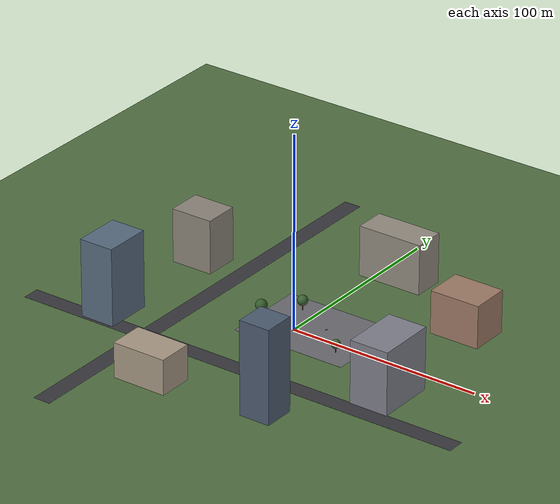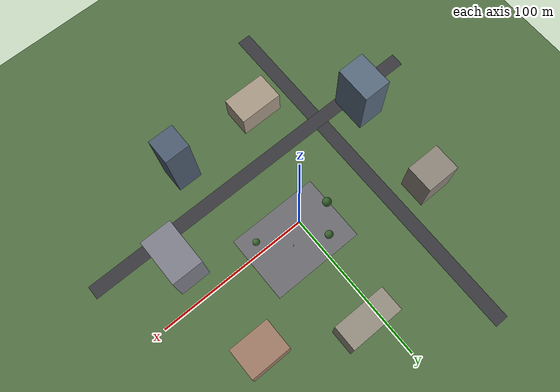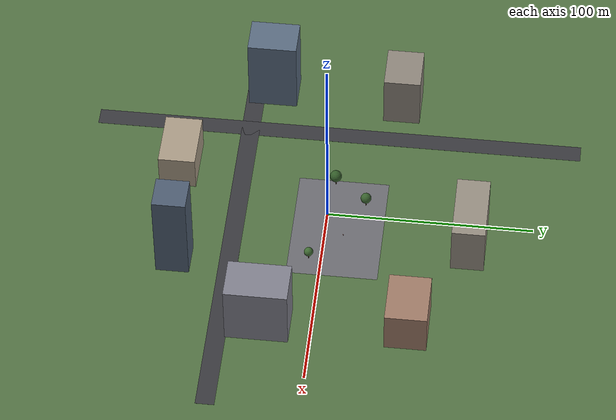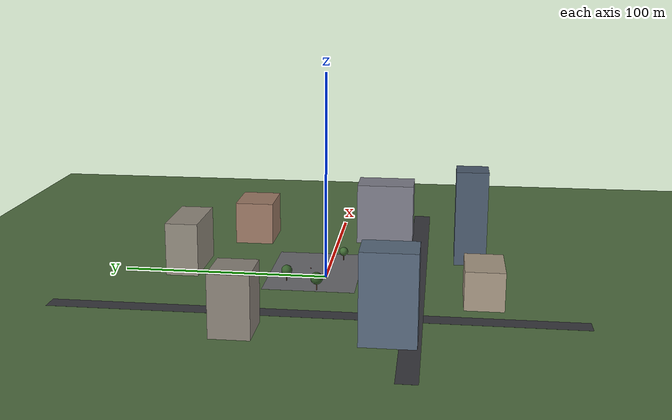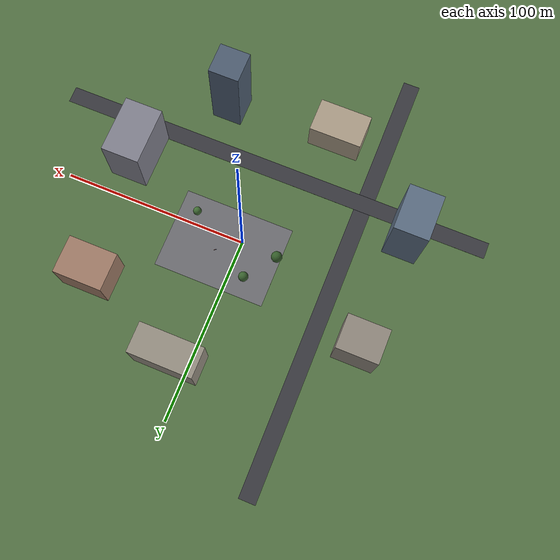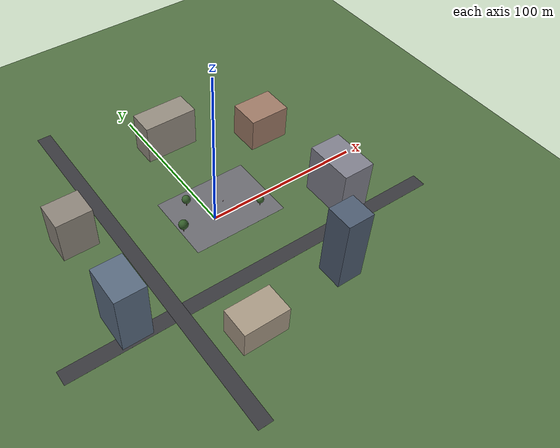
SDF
<sdf version="1.9">
 <world name="gradis_city">
  <physics name="1ms" type="ignored">
   <max_step_size>0.001</max_step_size>
   <real_time_factor>1.0</real_time_factor>
  </physics>
  <plugin filename="gz-sim-physics-system" name="gz::sim::systems::Physics"/>
  <plugin filename="gz-sim-user-commands-system" name="gz::sim::systems::UserCommands"/>
  <plugin filename="gz-sim-scene-broadcaster-system" name="gz::sim::systems::SceneBroadcaster"/>
  <plugin filename="gz-sim-imu-system" name="gz::sim::systems::Imu"/>
  <plugin filename="gz-sim-sensors-system" name="gz::sim::systems::Sensors">
   <render_engine>ogre2</render_engine>
  </plugin>
  <spherical_coordinates>
   <surface_model>EARTH_WGS84</surface_model>
   <latitude_deg>37.52860</latitude_deg>
   <longitude_deg>126.96520</longitude_deg>
   <elevation>38</elevation>
   <heading_deg>0</heading_deg>
  </spherical_coordinates>
  <scene>
   <ambient>0.55 0.55 0.6 1</ambient>
   <background>0.62 0.74 0.91 1</background>
   <shadows>true</shadows>
  </scene>
  <light type="directional" name="sun">
   <pose>0 0 200 0 0 0</pose>
   <diffuse>0.95 0.92 0.85 1</diffuse>
   <direction>-0.4 -0.5 -1</direction>
  </light>
  <model name="ground">
   <static>true</static>
   <link name="l">
    <collision name="c"><geometry><plane><normal>0 0 1</normal><size>500 500</size></plane></geometry></collision>
    <visual name="v">
     <geometry><plane><normal>0 0 1</normal><size>500 500</size></plane></geometry>
     <material><ambient>0.30 0.42 0.24 1</ambient><diffuse>0.32 0.44 0.26 1</diffuse></material>
    </visual>
   </link>
  </model>
  <model name="plaza">
   <static>true</static>
   <pose>8 6 0.01 0 0 0</pose>
   <link name="l">
    <visual name="v">
     <geometry><box><size>60 44 0.02</size></box></geometry>
     <material><diffuse>0.42 0.42 0.44 1</diffuse></material>
    </visual>
    <collision name="c"><geometry><box><size>60 44 0.02</size></box></geometry></collision>
   </link>
  </model>
  <model name="road_ew">
   <static>true</static>
   <pose>0 -44 0.01 0 0 0</pose>
   <link name="l">
    <visual name="v">
     <geometry><box><size>240 9 0.02</size></box></geometry>
     <material><diffuse>0.22 0.22 0.24 1</diffuse></material>
    </visual>
   </link>
  </model>
  <model name="road_ns">
   <static>true</static>
   <pose>-52 0 0.01 0 0 0</pose>
   <link name="l">
    <visual name="v">
     <geometry><box><size>9 240 0.02</size></box></geometry>
     <material><diffuse>0.22 0.22 0.24 1</diffuse></material>
    </visual>
   </link>
  </model>
  <model name="bldg1">
   <static>true</static>
   <pose>-75 30 14 0 0 0</pose>
   <link name="l">
    <visual name="v">
     <geometry><box><size>22 18 28</size></box></geometry>
     <material><diffuse>0.55 0.52 0.48 1</diffuse></material>
    </visual>
    <collision name="c"><geometry><box><size>22 18 28</size></box></geometry></collision>
   </link>
  </model>
  <model name="bldg2">
   <static>true</static>
   <pose>-78 -35 20 0 0 0</pose>
   <link name="l">
    <visual name="v">
     <geometry><box><size>18 24 40</size></box></geometry>
     <material><diffuse>0.35 0.42 0.50 1</diffuse></material>
    </visual>
    <collision name="c"><geometry><box><size>18 24 40</size></box></geometry></collision>
   </link>
  </model>
  <model name="bldg3">
   <static>true</static>
   <pose>65 45 11 0 0 0</pose>
   <link name="l">
    <visual name="v">
     <geometry><box><size>26 20 22</size></box></geometry>
     <material><diffuse>0.62 0.48 0.40 1</diffuse></material>
    </visual>
    <collision name="c"><geometry><box><size>26 20 22</size></box></geometry></collision>
   </link>
  </model>
  <model name="bldg4">
   <static>true</static>
   <pose>70 -25 16 0 0 0</pose>
   <link name="l">
    <visual name="v">
     <geometry><box><size>20 30 32</size></box></geometry>
     <material><diffuse>0.50 0.50 0.55 1</diffuse></material>
    </visual>
    <collision name="c"><geometry><box><size>20 30 32</size></box></geometry></collision>
   </link>
  </model>
  <model name="bldg5">
   <static>true</static>
   <pose>10 70 13 0 0 0</pose>
   <link name="l">
    <visual name="v">
     <geometry><box><size>34 16 26</size></box></geometry>
     <material><diffuse>0.58 0.55 0.50 1</diffuse></material>
    </visual>
    <collision name="c"><geometry><box><size>34 16 26</size></box></geometry></collision>
   </link>
  </model>
  <model name="bldg6">
   <static>true</static>
   <pose>-25 -75 9 0 0 0</pose>
   <link name="l">
    <visual name="v">
     <geometry><box><size>28 18 18</size></box></geometry>
     <material><diffuse>0.66 0.60 0.52 1</diffuse></material>
    </visual>
    <collision name="c"><geometry><box><size>28 18 18</size></box></geometry></collision>
   </link>
  </model>
  <model name="bldg7">
   <static>true</static>
   <pose>35 -70 24 0 0 0</pose>
   <link name="l">
    <visual name="v">
     <geometry><box><size>16 16 48</size></box></geometry>
     <material><diffuse>0.30 0.36 0.44 1</diffuse></material>
    </visual>
    <collision name="c"><geometry><box><size>16 16 48</size></box></geometry></collision>
   </link>
  </model>
  <model name="tree1">
   <static>true</static>
   <pose>-8 18 0 0 0 0</pose>
   <link name="l">
    <visual name="trunk">
     <pose>0 0 2 0 0 0</pose>
     <geometry><cylinder><radius>0.25</radius><length>4</length></cylinder></geometry>
     <material><diffuse>0.36 0.25 0.16 1</diffuse></material>
    </visual>
    <visual name="crown">
     <pose>0 0 5.2 0 0 0</pose>
     <geometry><sphere><radius>2.6</radius></sphere></geometry>
     <material><diffuse>0.22 0.38 0.18 1</diffuse></material>
    </visual>
    <collision name="c">
     <pose>0 0 3 0 0 0</pose>
     <geometry><cylinder><radius>0.3</radius><length>6</length></cylinder></geometry>
    </collision>
   </link>
  </model>
  <model name="tree2">
   <static>true</static>
   <pose>28 -6 0 0 0 0</pose>
   <link name="l">
    <visual name="trunk">
     <pose>0 0 1.8 0 0 0</pose>
     <geometry><cylinder><radius>0.22</radius><length>3.6</length></cylinder></geometry>
     <material><diffuse>0.36 0.25 0.16 1</diffuse></material>
    </visual>
    <visual name="crown">
     <pose>0 0 4.6 0 0 0</pose>
     <geometry><sphere><radius>2.2</radius></sphere></geometry>
     <material><diffuse>0.25 0.42 0.20 1</diffuse></material>
    </visual>
   </link>
  </model>
  <model name="tree3">
   <static>true</static>
   <pose>-20 2 0 0 0 0</pose>
   <link name="l">
    <visual name="trunk">
     <pose>0 0 2.2 0 0 0</pose>
     <geometry><cylinder><radius>0.28</radius><length>4.4</length></cylinder></geometry>
     <material><diffuse>0.36 0.25 0.16 1</diffuse></material>
    </visual>
    <visual name="crown">
     <pose>0 0 5.8 0 0 0</pose>
     <geometry><sphere><radius>2.9</radius></sphere></geometry>
     <material><diffuse>0.20 0.36 0.16 1</diffuse></material>
    </visual>
   </link>
  </model>
  <include><uri>model://dji_dock3</uri><name>dock3_a</name></include>
  <include><uri>model://m4td</uri><name>m4td</name><pose>0 0 0.50 0 0 0</pose></include>
  <model name="person_down">
   <static>true</static>
   <pose>12 9 0.12 0 1.5708 0.6</pose>
   <link name="l">
    <visual name="torso">
     <geometry><capsule><radius>0.14</radius><length>0.5</length></capsule></geometry>
     <material><diffuse>0.55 0.30 0.25 1</diffuse></material>
    </visual>
    <visual name="head">
     <pose>0 0 0.42 0 0 0</pose>
     <geometry><sphere><radius>0.1</radius></sphere></geometry>
     <material><diffuse>0.85 0.65 0.52 1</diffuse></material>
    </visual>
    <visual name="leg_l">
     <pose>0.07 0.05 -0.55 0 0.15 0</pose>
     <geometry><capsule><radius>0.06</radius><length>0.55</length></capsule></geometry>
     <material><diffuse>0.18 0.20 0.32 1</diffuse></material>
    </visual>
    <visual name="leg_r">
     <pose>-0.07 -0.03 -0.55 0 -0.1 0</pose>
     <geometry><capsule><radius>0.06</radius><length>0.55</length></capsule></geometry>
     <material><diffuse>0.18 0.20 0.32 1</diffuse></material>
    </visual>
    <visual name="arm_l">
     <pose>0.2 0.1 0.1 0.4 0 0</pose>
     <geometry><capsule><radius>0.045</radius><length>0.45</length></capsule></geometry>
     <material><diffuse>0.55 0.30 0.25 1</diffuse></material>
    </visual>
    <visual name="arm_r">
     <pose>-0.2 -0.05 0.1 -0.5 0 0</pose>
     <geometry><capsule><radius>0.045</radius><length>0.45</length></capsule></geometry>
     <material><diffuse>0.55 0.30 0.25 1</diffuse></material>
    </visual>
   </link>
  </model>
 </world>
</sdf>

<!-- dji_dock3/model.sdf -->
<sdf version="1.9">
  <model name="dji_dock3">
    <static>true</static>
    <link name="body">
      <!-- 받침 베이스 -->
      <visual name="base">
        <pose>0 0 0.06 0 0 0</pose>
        <geometry><box><size>1.15 0.95 0.12</size></box></geometry>
        <material><ambient>0.25 0.25 0.26 1</ambient><diffuse>0.35 0.35 0.37 1</diffuse></material>
      </visual>
      <collision name="base_col">
        <pose>0 0 0.06 0 0 0</pose>
        <geometry><box><size>1.15 0.95 0.12</size></box></geometry>
      </collision>

      <!-- 본체 (화이트 인클로저) -->
      <visual name="shell">
        <pose>0 0 0.30 0 0 0</pose>
        <geometry><box><size>1.0 0.8 0.36</size></box></geometry>
        <material><ambient>0.75 0.76 0.78 1</ambient><diffuse>0.88 0.89 0.91 1</diffuse>
          <specular>0.2 0.2 0.2 1</specular></material>
      </visual>
      <collision name="shell_col">
        <pose>0 0 0.30 0 0 0</pose>
        <geometry><box><size>1.0 0.8 0.36</size></box></geometry>
      </collision>

      <!-- 개방된 리드 패널 (좌/우, 바깥으로 젖혀짐) -->
      <visual name="lid_l">
        <pose>0 0.55 0.50 -0.55 0 0</pose>
        <geometry><box><size>1.0 0.42 0.02</size></box></geometry>
        <material><diffuse>0.85 0.86 0.88 1</diffuse></material>
      </visual>
      <visual name="lid_r">
        <pose>0 -0.55 0.50 0.55 0 0</pose>
        <geometry><box><size>1.0 0.42 0.02</size></box></geometry>
        <material><diffuse>0.85 0.86 0.88 1</diffuse></material>
      </visual>

      <!-- 내부 착륙 패드 (H 마커) — 드론 스폰 위치 z≈0.50 -->
      <visual name="pad">
        <pose>0 0 0.485 0 0 0</pose>
        <geometry><box><size>0.6 0.6 0.01</size></box></geometry>
        <material><diffuse>0.12 0.12 0.13 1</diffuse></material>
      </visual>
      <collision name="pad_col">
        <pose>0 0 0.485 0 0 0</pose>
        <geometry><box><size>0.6 0.6 0.01</size></box></geometry>
      </collision>
      <visual name="pad_marker">
        <pose>0 0 0.492 0 0 0</pose>
        <geometry><cylinder><radius>0.2</radius><length>0.004</length></cylinder></geometry>
        <material><diffuse>0.85 0.74 0.28 1</diffuse></material>
      </visual>
      <visual name="pad_marker_core">
        <pose>0 0 0.495 0 0 0</pose>
        <geometry><cylinder><radius>0.07</radius><length>0.004</length></cylinder></geometry>
        <material><diffuse>0.12 0.12 0.13 1</diffuse></material>
      </visual>

      <!-- 상태 LED 바 -->
      <visual name="led">
        <pose>0.505 0 0.42 0 0 0</pose>
        <geometry><box><size>0.012 0.3 0.03</size></box></geometry>
        <material><emissive>0.1 0.7 0.25 1</emissive><diffuse>0.1 0.6 0.25 1</diffuse></material>
      </visual>

      <!-- 기상 센서 마스트 (풍속/강우) -->
      <visual name="mast">
        <pose>-0.42 -0.32 0.78 0 0 0</pose>
        <geometry><cylinder><radius>0.012</radius><length>0.6</length></cylinder></geometry>
        <material><diffuse>0.4 0.4 0.42 1</diffuse></material>
      </visual>
      <visual name="anemometer">
        <pose>-0.42 -0.32 1.1 0 0 0</pose>
        <geometry><sphere><radius>0.035</radius></sphere></geometry>
        <material><diffuse>0.7 0.7 0.72 1</diffuse></material>
      </visual>

      <!-- 야간용 패드 조명 -->
      <light name="pad_light" type="point">
        <pose>0 0 0.9 0 0 0</pose>
        <diffuse>0.8 0.85 0.95 1</diffuse>
        <attenuation><range>8</range><constant>0.4</constant>
          <linear>0.2</linear><quadratic>0.05</quadratic></attenuation>
        <cast_shadows>false</cast_shadows>
        <intensity>1.2</intensity>
      </light>
    </link>
  </model>
</sdf>

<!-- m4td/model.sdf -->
<sdf version="1.9">
  <model name="m4td">
    <pose>0 0 0.12 0 0 0</pose>

    <!-- ===================== 기체 본체 ===================== -->
    <link name="base_link">
      <inertial>
        <mass>1.69</mass> <!-- 본체+배터리 (로터 4x0.04 제외) -->
        <inertia>
          <ixx>0.021</ixx><iyy>0.021</iyy><izz>0.036</izz>
          <ixy>0</ixy><ixz>0</ixz><iyz>0</iyz>
        </inertia>
      </inertial>

      <visual name="fuselage">
        <geometry><box><size>0.28 0.14 0.09</size></box></geometry>
        <material><ambient>0.16 0.17 0.18 1</ambient><diffuse>0.32 0.33 0.35 1</diffuse></material>
      </visual>
      <collision name="fuselage_col">
        <geometry><box><size>0.28 0.14 0.09</size></box></geometry>
      </collision>

      <!-- 4 폴딩암 -->
      <visual name="arm_fr"><pose>0.082 -0.082 0.02 0 0 -0.785</pose>
        <geometry><box><size>0.22 0.025 0.018</size></box></geometry>
        <material><diffuse>0.2 0.2 0.22 1</diffuse></material></visual>
      <visual name="arm_fl"><pose>0.082 0.082 0.02 0 0 0.785</pose>
        <geometry><box><size>0.22 0.025 0.018</size></box></geometry>
        <material><diffuse>0.2 0.2 0.22 1</diffuse></material></visual>
      <visual name="arm_br"><pose>-0.082 -0.082 0.02 0 0 0.785</pose>
        <geometry><box><size>0.22 0.025 0.018</size></box></geometry>
        <material><diffuse>0.2 0.2 0.22 1</diffuse></material></visual>
      <visual name="arm_bl"><pose>-0.082 0.082 0.02 0 0 -0.785</pose>
        <geometry><box><size>0.22 0.025 0.018</size></box></geometry>
        <material><diffuse>0.2 0.2 0.22 1</diffuse></material></visual>

      <!-- 상부 RTK 돔 + 전방위 비전 센서 표식 -->
      <visual name="rtk_dome"><pose>0 0 0.055 0 0 0</pose>
        <geometry><cylinder><radius>0.022</radius><length>0.02</length></cylinder></geometry>
        <material><diffuse>0.5 0.5 0.52 1</diffuse></material></visual>
      <visual name="vision_front"><pose>0.142 0 0.01 0 1.5708 0</pose>
        <geometry><cylinder><radius>0.009</radius><length>0.004</length></cylinder></geometry>
        <material><diffuse>0.02 0.02 0.05 1</diffuse></material></visual>

      <!-- 랜딩 레그 -->
      <visual name="leg_l"><pose>0 0.06 -0.07 0.3 0 0</pose>
        <geometry><cylinder><radius>0.006</radius><length>0.08</length></cylinder></geometry>
        <material><diffuse>0.18 0.18 0.18 1</diffuse></material></visual>
      <visual name="leg_r"><pose>0 -0.06 -0.07 -0.3 0 0</pose>
        <geometry><cylinder><radius>0.006</radius><length>0.08</length></cylinder></geometry>
        <material><diffuse>0.18 0.18 0.18 1</diffuse></material></visual>
      <collision name="legs_col"><pose>0 0 -0.1 0 0 0</pose>
        <geometry><box><size>0.14 0.16 0.02</size></box></geometry></collision>

      <sensor name="imu_sensor" type="imu">
        <pose>0 0 0 3.141593 0 0</pose>
        <always_on>1</always_on>
        <update_rate>1000</update_rate>
      </sensor>
    </link>

    <!-- ============ 짐벌 (광각+텔레+열화상+LRF, 전방 하향 ~55°) ============ -->
    <link name="gimbal_link">
      <pose>0.13 0 -0.07 0 0.96 0</pose>
      <inertial>
        <mass>0.16</mass>
        <inertia><ixx>0.0001</ixx><iyy>0.0001</iyy><izz>0.0001</izz>
          <ixy>0</ixy><ixz>0</ixz><iyz>0</iyz></inertia>
      </inertial>
      <visual name="gimbal_body">
        <geometry><sphere><radius>0.032</radius></sphere></geometry>
        <material><diffuse>0.12 0.12 0.12 1</diffuse></material>
      </visual>
      <visual name="lens_wide">
        <pose>0.03 0.008 0 0 1.5708 0</pose>
        <geometry><cylinder><radius>0.009</radius><length>0.012</length></cylinder></geometry>
        <material><diffuse>0.02 0.02 0.05 1</diffuse></material>
      </visual>
      <visual name="lens_ir">
        <pose>0.03 -0.012 0 0 1.5708 0</pose>
        <geometry><cylinder><radius>0.006</radius><length>0.012</length></cylinder></geometry>
        <material><diffuse>0.05 0.02 0.02 1</diffuse></material>
      </visual>
      <sensor name="eo_camera" type="camera">
        <always_on>1</always_on>
        <update_rate>15</update_rate>
        <visualize>1</visualize>
        <topic>eo_camera</topic>
        <camera>
          <horizontal_fov>1.15</horizontal_fov>
          <image><width>640</width><height>360</height><format>R8G8B8</format></image>
          <clip><near>0.1</near><far>800</far></clip>
        </camera>
      </sensor>
    </link>
    <joint name="gimbal_joint" type="fixed">
      <parent>base_link</parent><child>gimbal_link</child>
    </joint>

    <!-- ===================== 로터 4개 ===================== -->
    <!-- ArduPilot Quad-X: 0=FR(CCW) 1=BL(CCW) 2=FL(CW) 3=BR(CW) -->
    <link name="rotor_0">
      <pose>0.163 -0.163 0.045 0 0 0</pose>
      <inertial><mass>0.04</mass>
        <inertia><ixx>2e-5</ixx><iyy>3.2e-4</iyy><izz>3.3e-4</izz>
          <ixy>0</ixy><ixz>0</ixz><iyz>0</iyz></inertia></inertial>
      <visual name="prop"><geometry><box><size>0.30 0.025 0.005</size></box></geometry>
        <material><diffuse>0.85 0.74 0.28 1</diffuse></material></visual>
      <collision name="prop_col"><geometry><box><size>0.30 0.025 0.005</size></box></geometry></collision>
    </link>
    <joint name="rotor_0_joint" type="revolute">
      <parent>base_link</parent><child>rotor_0</child>
      <axis><xyz>0 0 1</xyz><limit><lower>-1e16</lower><upper>1e16</upper></limit>
        <dynamics><damping>0.002</damping></dynamics></axis>
    </joint>

    <link name="rotor_1">
      <pose>-0.163 0.163 0.045 0 0 0</pose>
      <inertial><mass>0.04</mass>
        <inertia><ixx>2e-5</ixx><iyy>3.2e-4</iyy><izz>3.3e-4</izz>
          <ixy>0</ixy><ixz>0</ixz><iyz>0</iyz></inertia></inertial>
      <visual name="prop"><geometry><box><size>0.30 0.025 0.005</size></box></geometry>
        <material><diffuse>0.85 0.74 0.28 1</diffuse></material></visual>
      <collision name="prop_col"><geometry><box><size>0.30 0.025 0.005</size></box></geometry></collision>
    </link>
    <joint name="rotor_1_joint" type="revolute">
      <parent>base_link</parent><child>rotor_1</child>
      <axis><xyz>0 0 1</xyz><limit><lower>-1e16</lower><upper>1e16</upper></limit>
        <dynamics><damping>0.002</damping></dynamics></axis>
    </joint>

    <link name="rotor_2">
      <pose>0.163 0.163 0.045 0 0 0</pose>
      <inertial><mass>0.04</mass>
        <inertia><ixx>2e-5</ixx><iyy>3.2e-4</iyy><izz>3.3e-4</izz>
          <ixy>0</ixy><ixz>0</ixz><iyz>0</iyz></inertia></inertial>
      <visual name="prop"><geometry><box><size>0.30 0.025 0.005</size></box></geometry>
        <material><diffuse>0.25 0.25 0.27 1</diffuse></material></visual>
      <collision name="prop_col"><geometry><box><size>0.30 0.025 0.005</size></box></geometry></collision>
    </link>
    <joint name="rotor_2_joint" type="revolute">
      <parent>base_link</parent><child>rotor_2</child>
      <axis><xyz>0 0 1</xyz><limit><lower>-1e16</lower><upper>1e16</upper></limit>
        <dynamics><damping>0.002</damping></dynamics></axis>
    </joint>

    <link name="rotor_3">
      <pose>-0.163 -0.163 0.045 0 0 0</pose>
      <inertial><mass>0.04</mass>
        <inertia><ixx>2e-5</ixx><iyy>3.2e-4</iyy><izz>3.3e-4</izz>
          <ixy>0</ixy><ixz>0</ixz><iyz>0</iyz></inertia></inertial>
      <visual name="prop"><geometry><box><size>0.30 0.025 0.005</size></box></geometry>
        <material><diffuse>0.25 0.25 0.27 1</diffuse></material></visual>
      <collision name="prop_col"><geometry><box><size>0.30 0.025 0.005</size></box></geometry></collision>
    </link>
    <joint name="rotor_3_joint" type="revolute">
      <parent>base_link</parent><child>rotor_3</child>
      <axis><xyz>0 0 1</xyz><limit><lower>-1e16</lower><upper>1e16</upper></limit>
        <dynamics><damping>0.002</damping></dynamics></axis>
    </joint>

    <!-- ===================== 양력 모델 (LiftDrag) ===================== -->
    <!-- 12" 프롭 추정: 1.85kg 호버 ~45% 스로틀 목표 1차 산정 -->
    <plugin filename="gz-sim-lift-drag-system" name="gz::sim::systems::LiftDrag">
      <a0>0.3</a0><cla>4.25</cla><cda>0.10</cda><cma>0</cma>
      <alpha_stall>1.4</alpha_stall><cla_stall>-0.025</cla_stall>
      <cda_stall>0.0</cda_stall><cma_stall>0</cma_stall>
      <area>0.0035</area><air_density>1.2041</air_density>
      <cp>0.075 0 0</cp><forward>1 0 0</forward><upward>0 0 1</upward>
      <link_name>rotor_0</link_name>
    </plugin>
    <plugin filename="gz-sim-lift-drag-system" name="gz::sim::systems::LiftDrag">
      <a0>0.3</a0><cla>4.25</cla><cda>0.10</cda><cma>0</cma>
      <alpha_stall>1.4</alpha_stall><cla_stall>-0.025</cla_stall>
      <cda_stall>0.0</cda_stall><cma_stall>0</cma_stall>
      <area>0.0035</area><air_density>1.2041</air_density>
      <cp>0.075 0 0</cp><forward>1 0 0</forward><upward>0 0 1</upward>
      <link_name>rotor_1</link_name>
    </plugin>
    <plugin filename="gz-sim-lift-drag-system" name="gz::sim::systems::LiftDrag">
      <a0>0.3</a0><cla>4.25</cla><cda>0.10</cda><cma>0</cma>
      <alpha_stall>1.4</alpha_stall><cla_stall>-0.025</cla_stall>
      <cda_stall>0.0</cda_stall><cma_stall>0</cma_stall>
      <area>0.0035</area><air_density>1.2041</air_density>
      <cp>-0.075 0 0</cp><forward>-1 0 0</forward><upward>0 0 1</upward>
      <link_name>rotor_2</link_name>
    </plugin>
    <plugin filename="gz-sim-lift-drag-system" name="gz::sim::systems::LiftDrag">
      <a0>0.3</a0><cla>4.25</cla><cda>0.10</cda><cma>0</cma>
      <alpha_stall>1.4</alpha_stall><cla_stall>-0.025</cla_stall>
      <cda_stall>0.0</cda_stall><cma_stall>0</cma_stall>
      <area>0.0035</area><air_density>1.2041</air_density>
      <cp>-0.075 0 0</cp><forward>-1 0 0</forward><upward>0 0 1</upward>
      <link_name>rotor_3</link_name>
    </plugin>

    <plugin filename="gz-sim-apply-joint-force-system"
            name="gz::sim::systems::ApplyJointForce">
      <joint_name>rotor_0_joint</joint_name>
    </plugin>
    <plugin filename="gz-sim-apply-joint-force-system"
            name="gz::sim::systems::ApplyJointForce">
      <joint_name>rotor_1_joint</joint_name>
    </plugin>
    <plugin filename="gz-sim-apply-joint-force-system"
            name="gz::sim::systems::ApplyJointForce">
      <joint_name>rotor_2_joint</joint_name>
    </plugin>
    <plugin filename="gz-sim-apply-joint-force-system"
            name="gz::sim::systems::ApplyJointForce">
      <joint_name>rotor_3_joint</joint_name>
    </plugin>
    <plugin filename="gz-sim-joint-state-publisher-system"
            name="gz::sim::systems::JointStatePublisher">
    </plugin>

    <!-- ===================== ArduPilot FDM 브리지 ===================== -->
    <!-- SITL: sim_vehicle.py -v ArduCopter -f JSON (model JSON, ardupilot_gazebo 빌드) -->
    <plugin name="ArduPilotPlugin" filename="ArduPilotPlugin">
      <fdm_addr>127.0.0.1</fdm_addr>
      <fdm_port_in>9002</fdm_port_in>
      <connectionTimeoutMaxCount>5</connectionTimeoutMaxCount>
      <lock_step>1</lock_step>
      <have_32_channels>0</have_32_channels>
      <modelXYZToAirplaneXForwardZDown>0 0 0 3.141593 0 0</modelXYZToAirplaneXForwardZDown>
      <gazeboXYZToNED>0 0 0 3.141593 0 1.5708</gazeboXYZToNED>
      <imuName>base_link::imu_sensor</imuName>

      <control channel="0">
        <jointName>rotor_0_joint</jointName>
        <useForce>1</useForce>
        <multiplier>1100</multiplier><offset>0</offset>
        <servo_min>1100</servo_min><servo_max>1900</servo_max>
        <type>VELOCITY</type>
        <p_gain>0.20</p_gain><i_gain>0</i_gain><d_gain>0</d_gain>
        <i_max>0</i_max><i_min>0</i_min>
        <cmd_max>2.0</cmd_max><cmd_min>-2.0</cmd_min>
      </control>
      <control channel="1">
        <jointName>rotor_1_joint</jointName>
        <useForce>1</useForce>
        <multiplier>1100</multiplier><offset>0</offset>
        <servo_min>1100</servo_min><servo_max>1900</servo_max>
        <type>VELOCITY</type>
        <p_gain>0.20</p_gain><i_gain>0</i_gain><d_gain>0</d_gain>
        <i_max>0</i_max><i_min>0</i_min>
        <cmd_max>2.0</cmd_max><cmd_min>-2.0</cmd_min>
      </control>
      <control channel="2">
        <jointName>rotor_2_joint</jointName>
        <useForce>1</useForce>
        <multiplier>-1100</multiplier><offset>0</offset>
        <servo_min>1100</servo_min><servo_max>1900</servo_max>
        <type>VELOCITY</type>
        <p_gain>0.20</p_gain><i_gain>0</i_gain><d_gain>0</d_gain>
        <i_max>0</i_max><i_min>0</i_min>
        <cmd_max>2.0</cmd_max><cmd_min>-2.0</cmd_min>
      </control>
      <control channel="3">
        <jointName>rotor_3_joint</jointName>
        <useForce>1</useForce>
        <multiplier>-1100</multiplier><offset>0</offset>
        <servo_min>1100</servo_min><servo_max>1900</servo_max>
        <type>VELOCITY</type>
        <p_gain>0.20</p_gain><i_gain>0</i_gain><d_gain>0</d_gain>
        <i_max>0</i_max><i_min>0</i_min>
        <cmd_max>2.0</cmd_max><cmd_min>-2.0</cmd_min>
      </control>
    </plugin>
  </model>
</sdf>
